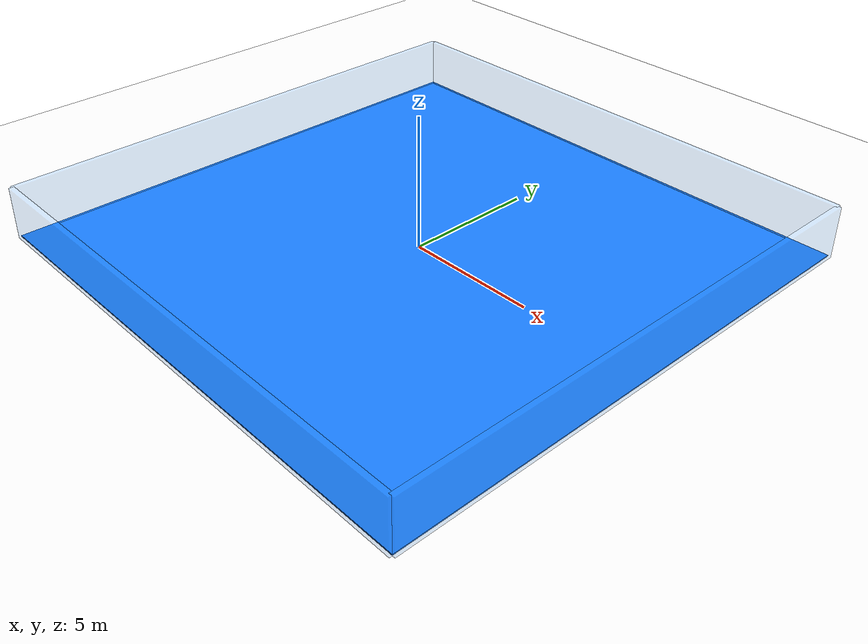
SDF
<?xml version="1.0" ?>
<sdf version="1.8">
  <world name="piscina_world">

    <!-- Physics (1 ms) -->
    <physics name="1ms" type="ignored">
      <max_step_size>0.001</max_step_size>
      <real_time_factor>1.0</real_time_factor>
    </physics>

    <!-- Plugins base -->
    <plugin filename="gz-sim-physics-system" name="gz::sim::systems::Physics"/>
    <plugin filename="gz-sim-user-commands-system" name="gz::sim::systems::UserCommands"/>
    <plugin filename="gz-sim-scene-broadcaster-system" name="gz::sim::systems::SceneBroadcaster"/>
    <plugin filename="gz-sim-contact-system" name="gz::sim::systems::Contact"/>

    <!-- Luz -->
    <light type="directional" name="sun">
      <cast_shadows>true</cast_shadows>
      <pose>0 0 10 0 0 0</pose>
      <diffuse>0.8 0.8 0.8 1</diffuse>
      <specular>0.2 0.2 0.2 1</specular>
      <attenuation>
        <range>1000</range>
        <constant>0.9</constant>
        <linear>0.01</linear>
        <quadratic>0.001</quadratic>
      </attenuation>
      <direction>-0.5 0.1 -0.9</direction>
    </light>

    <!-- Piso 1: TRANSPARENTE con colisión -->
    <model name="piso_transparente">
      <static>true</static>
      <pose>0 0 0 0 0 0</pose>
      <link name="link">
        <collision name="collision">
          <geometry>
            <plane>
              <normal>0 0 1</normal>
              <size>100 100</size>
            </plane>
          </geometry>
        </collision>
        <visual name="visual">
          <geometry>
            <plane>
              <normal>0 0 1</normal>
              <size>100 100</size>
            </plane>
          </geometry>
          <material>
            <ambient>1 1 1 1</ambient>
            <diffuse>1 1 1 1</diffuse>
            <specular>0.1 0.1 0.1 1</specular>
          </material>
          <transparency>0.7</transparency>
          <cast_shadows>false</cast_shadows>
        </visual>
      </link>
    </model>

    <!-- Piso 2: capa visual “agua” 20x20 (sin colisión) -->
    <model name="piso_color">
      <static>true</static>
      <pose>0 0 0.03 0 0 0</pose>
      <link name="link">
        <visual name="visual">
          <geometry>
            <box><size>20 20 0.04</size></box>
          </geometry>
          <material>
            <ambient>0.1 0.4 0.9 1</ambient>
            <diffuse>0.1 0.5 1.0 1</diffuse>
            <specular>0.05 0.05 0.1 1</specular>
            <emissive>0.0 0.0 0.05 1</emissive>
          </material>
          <cast_shadows>false</cast_shadows>
        </visual>
      </link>
    </model>

    <!-- LIMITES: cuatro muros alrededor del área 20x20 -->
    <!-- Ajustes rápidos -->
    <!-- WALL_T: grosor; WALL_H: altura; AREA: semilado (10 => 20x20) -->
    <model name="limites_mundo">
      <static>true</static>
      <pose>0 0 0 0 0 0</pose>
      <self_collide>false</self_collide>

      <!-- Parámetros manuales -->
      <!-- No existe macro en SDF puro; se documentan para referencia:
           WALL_T = 0.2, WALL_H = 2.0, AREA = 10.0 -->

      <!-- Norte (y = +AREA) -->
      <link name="wall_norte">
        <pose>0 10 1.0 0 0 0</pose> <!-- z = WALL_H/2 -->
        <collision name="col">
          <geometry>
            <box><size>20 0.2 2.0</size></box> <!-- 20 x WALL_T x WALL_H -->
          </geometry>
          <surface>
            <contact>
              <collide_bitmask>0xFF</collide_bitmask>
            </contact>
            <friction>
              <ode>
                <mu>1.0</mu>
                <mu2>1.0</mu2>
              </ode>
            </friction>
            <bounce>
              <restitution_coefficient>0.0</restitution_coefficient>
              <threshold>1e6</threshold>
            </bounce>
          </surface>
        </collision>
        <visual name="vis">
          <geometry>
            <box><size>20 0.2 2.0</size></box>
          </geometry>
          <material>
            <ambient>0.2 0.6 1.0 1</ambient>
            <diffuse>0.2 0.6 1.0 1</diffuse>
          </material>
          <transparency>0.9</transparency> <!-- casi invisible -->
          <cast_shadows>false</cast_shadows>
        </visual>
      </link>

      <!-- Sur (y = -AREA) -->
      <link name="wall_sur">
        <pose>0 -10 1.0 0 0 0</pose>
        <collision name="col">
          <geometry>
            <box><size>20 0.2 2.0</size></box>
          </geometry>
          <surface>
            <contact><collide_bitmask>0xFF</collide_bitmask></contact>
            <friction><ode><mu>1.0</mu><mu2>1.0</mu2></ode></friction>
            <bounce><restitution_coefficient>0.0</restitution_coefficient><threshold>1e6</threshold></bounce>
          </surface>
        </collision>
        <visual name="vis">
          <geometry>
            <box><size>20 0.2 2.0</size></box>
          </geometry>
          <material>
            <ambient>0.2 0.6 1.0 1</ambient>
            <diffuse>0.2 0.6 1.0 1</diffuse>
          </material>
          <transparency>0.9</transparency>
          <cast_shadows>false</cast_shadows>
        </visual>
      </link>

      <!-- Este (x = +AREA) -->
      <link name="wall_este">
        <pose>10 0 1.0 0 0 0</pose>
        <collision name="col">
          <geometry>
            <box><size>0.2 20 2.0</size></box> <!-- WALL_T x 20 x WALL_H -->
          </geometry>
          <surface>
            <contact><collide_bitmask>0xFF</collide_bitmask></contact>
            <friction><ode><mu>1.0</mu><mu2>1.0</mu2></ode></friction>
            <bounce><restitution_coefficient>0.0</restitution_coefficient><threshold>1e6</threshold></bounce>
          </surface>
        </collision>
        <visual name="vis">
          <geometry>
            <box><size>0.2 20 2.0</size></box>
          </geometry>
          <material>
            <ambient>0.2 0.6 1.0 1</ambient>
            <diffuse>0.2 0.6 1.0 1</diffuse>
          </material>
          <transparency>0.9</transparency>
          <cast_shadows>false</cast_shadows>
        </visual>
      </link>

      <!-- Oeste (x = -AREA) -->
      <link name="wall_oeste">
        <pose>-10 0 1.0 0 0 0</pose>
        <collision name="col">
          <geometry>
            <box><size>0.2 20 2.0</size></box>
          </geometry>
          <surface>
            <contact><collide_bitmask>0xFF</collide_bitmask></contact>
            <friction><ode><mu>1.0</mu><mu2>1.0</mu2></ode></friction>
            <bounce><restitution_coefficient>0.0</restitution_coefficient><threshold>1e6</threshold></bounce>
          </surface>
        </collision>
        <visual name="vis">
          <geometry>
            <box><size>0.2 20 2.0</size></box>
          </geometry>
          <material>
            <ambient>0.2 0.6 1.0 1</ambient>
            <diffuse>0.2 0.6 1.0 1</diffuse>
          </material>
          <transparency>0.9</transparency>
          <cast_shadows>false</cast_shadows>
        </visual>
      </link>
    </model>

  </world>
</sdf>
